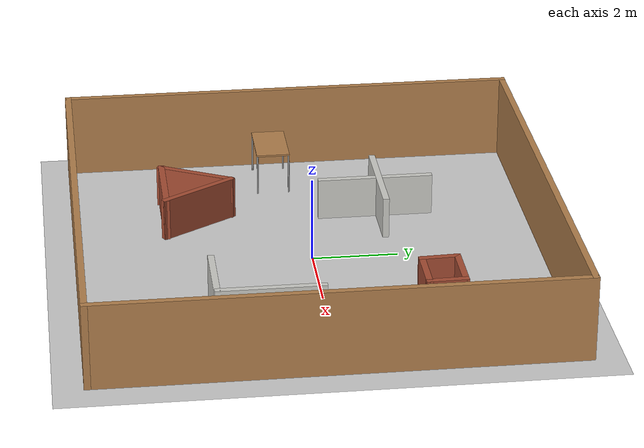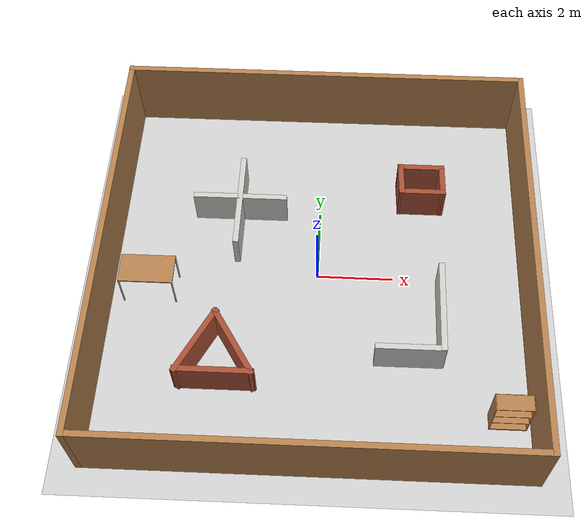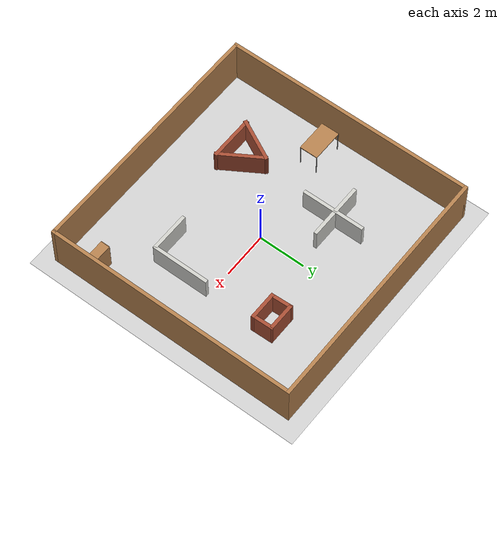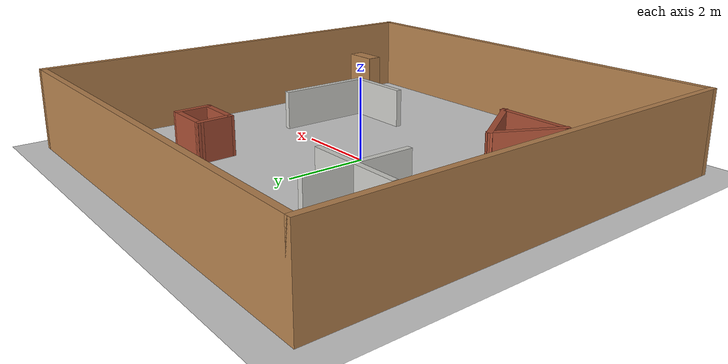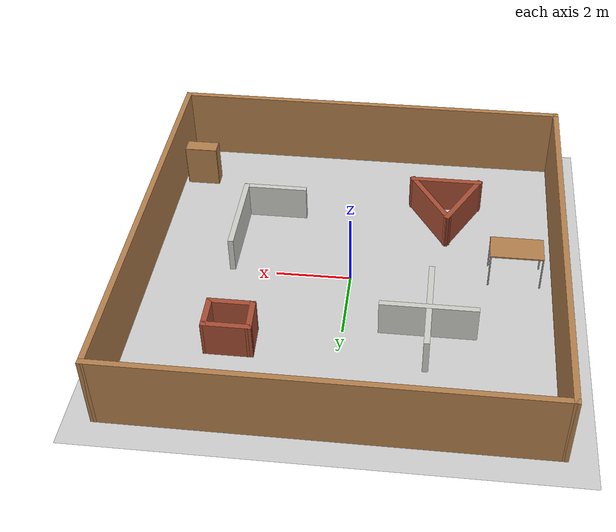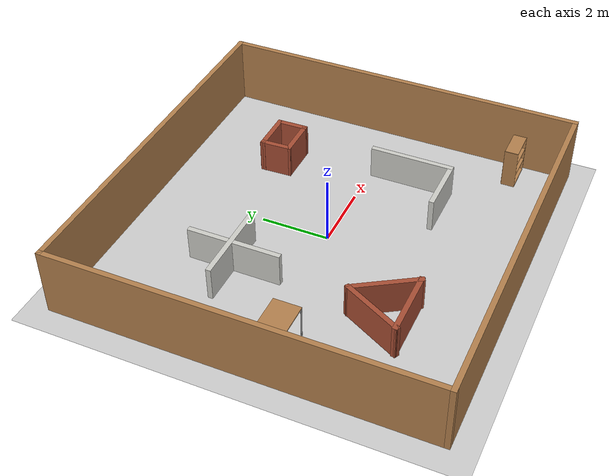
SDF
<sdf version="1.6">
 <world name="default">
  <light name="sun" type="directional">
   <pose>0 0 10 0 -0 0</pose>
   <diffuse>0.8 0.8 0.8 1</diffuse>
   <specular>0.1 0.1 0.1 1</specular>
   <attenuation>
    <range>1000</range>
    <constant>0.9</constant>
    <linear>0.01</linear>
    <quadratic>0.001</quadratic>
   </attenuation>
   <direction>-0.5 0.5 -1</direction>
  </light>
  <model name="ground_plane">
   <static>1</static>
   <link name="link">
    <collision name="collision">
     <geometry><plane><normal>0 0 1</normal><size>100 100</size></plane></geometry>
     <surface><friction><ode><mu>100</mu><mu2>50</mu2></ode></friction></surface>
    </collision>
    <visual name="visual">
     <cast_shadows>0</cast_shadows>
     <geometry><plane><normal>0 0 1</normal><size>100 100</size></plane></geometry>
     <material>
      <script><uri>file://media/materials/scripts/gazebo.material</uri><name>Gazebo/Grey</name></script>
     </material>
    </visual>
   </link>
  </model>
  <gravity>0 0 -9.8</gravity>
  <magnetic_field>6e-06 2.3e-05 -4.2e-05</magnetic_field>
  <atmosphere type="adiabatic"/>
  <physics name="default_physics" default="0" type="ode">
   <max_step_size>0.001</max_step_size>
   <real_time_factor>1</real_time_factor>
   <real_time_update_rate>1000</real_time_update_rate>
  </physics>
  <scene><ambient>0.4 0.4 0.4 1</ambient><background>0.7 0.7 0.7 1</background><shadows>1</shadows></scene>
  <spherical_coordinates>
   <surface_model>EARTH_WGS84</surface_model>
   <latitude_deg>0</latitude_deg>
   <longitude_deg>0</longitude_deg>
   <elevation>0</elevation>
   <heading_deg>0</heading_deg>
  </spherical_coordinates>
  <model name="obstacle_Wall_11">
   <pose>-2.152 1.857 0 0 -0 0</pose>
   <static>1</static>
   <link name="link">
    <visual name="Visual">
     <pose>0 0 0.5 0 -0 0</pose>
     <geometry><box><size>2.5 0.15 1</size></box></geometry>
     <material>
      <script><uri>file://media/materials/scripts/gazebo.material</uri><name>Gazebo/CeilingTiled</name></script>
     </material>
    </visual>
    <collision name="Collision">
     <pose>0 0 0.5 0 -0 0</pose>
     <geometry><box><size>2.5 0.15 1</size></box></geometry>
    </collision>
   </link>
  </model>
  <model name="obstacle_Wall_13">
   <pose>-2.155 1.764 0 0 0 -1.5708</pose>
   <static>1</static>
   <link name="link">
    <visual name="Visual">
     <pose>0 0 0.5 0 -0 0</pose>
     <geometry><box><size>2.75 0.15 1</size></box></geometry>
     <material>
      <script><uri>file://media/materials/scripts/gazebo.material</uri><name>Gazebo/CeilingTiled</name></script>
     </material>
    </visual>
    <collision name="Collision">
     <pose>0 0 0.5 0 -0 0</pose>
     <geometry><box><size>2.75 0.15 1</size></box></geometry>
    </collision>
   </link>
  </model>
  <model name="obstacle_Wall_15">
   <pose>2.724 3.029 0 0 -0 0</pose>
   <static>1</static>
   <link name="link">
    <visual name="Visual">
     <pose>0 0 0.5 0 -0 0</pose>
     <geometry><box><size>1.2678 0.15 1</size></box></geometry>
     <material>
      <script><uri>file://media/materials/scripts/gazebo.material</uri><name>Gazebo/Bricks</name></script>
     </material>
    </visual>
    <collision name="Collision">
     <pose>0 0 0.5 0 -0 0</pose>
     <geometry><box><size>1.2678 0.15 1</size></box></geometry>
    </collision>
   </link>
  </model>
  <model name="obstacle_Wall_16">
   <pose>3.2915 2.6215 0 0 0 -1.54994</pose>
   <static>1</static>
   <link name="link">
    <visual name="Visual">
     <pose>0 0 0.5 0 -0 0</pose>
     <geometry><box><size>0.965005 0.15 1</size></box></geometry>
     <material>
      <script><uri>file://media/materials/scripts/gazebo.material</uri><name>Gazebo/Bricks</name></script>
     </material>
    </visual>
    <collision name="Collision">
     <pose>0 0 0.5 0 -0 0</pose>
     <geometry><box><size>0.965005 0.15 1</size></box></geometry>
    </collision>
   </link>
  </model>
  <model name="obstacle_Wall_17">
   <pose>2.75 2.214 0 0 -0 3.14159</pose>
   <static>1</static>
   <link name="link">
    <visual name="Visual">
     <pose>0 0 0.5 0 -0 0</pose>
     <geometry><box><size>1.25 0.15 1</size></box></geometry>
     <material>
      <script><uri>file://media/materials/scripts/gazebo.material</uri><name>Gazebo/Bricks</name></script>
     </material>
    </visual>
    <collision name="Collision">
     <pose>0 0 0.5 0 -0 0</pose>
     <geometry><box><size>1.25 0.15 1</size></box></geometry>
    </collision>
   </link>
  </model>
  <model name="obstacle_Wall_18">
   <pose>2.1825 2.6215 0 0 -0 1.61372</pose>
   <static>1</static>
   <link name="link">
    <visual name="Visual">
     <pose>0 0 0.5 0 -0 0</pose>
     <geometry><box><size>0.965005 0.15 1</size></box></geometry>
     <material>
      <script><uri>file://media/materials/scripts/gazebo.material</uri><name>Gazebo/Bricks</name></script>
     </material>
    </visual>
    <collision name="Collision">
     <pose>0 0 0.5 0 -0 0</pose>
     <geometry><box><size>0.965005 0.15 1</size></box></geometry>
    </collision>
   </link>
  </model>
  <model name="obstacle_Wall_24">
   <pose>-2.89576 -2.49088 0 0 -0 1.09459</pose>
   <static>1</static>
   <link name="link">
    <visual name="Visual">
     <pose>0 0 0.5 0 -0 0</pose>
     <geometry><box><size>1.97704 0.15 1</size></box></geometry>
     <material>
      <script><uri>file://media/materials/scripts/gazebo.material</uri><name>Gazebo/Bricks</name></script>
     </material>
    </visual>
    <collision name="Collision">
     <pose>0 0 0.5 0 -0 0</pose>
     <geometry><box><size>1.97704 0.15 1</size></box></geometry>
    </collision>
   </link>
  </model>
  <model name="obstacle_Wall_25">
   <pose>-1.97077 -2.49088 0 0 0 -1.01325</pose>
   <static>1</static>
   <link name="link">
    <visual name="Visual">
     <pose>0 0 0.5 0 -0 0</pose>
     <geometry><box><size>2.06356 0.15 1</size></box></geometry>
     <material>
      <script><uri>file://media/materials/scripts/gazebo.material</uri><name>Gazebo/Bricks</name></script>
     </material>
    </visual>
    <collision name="Collision">
     <pose>0 0 0.5 0 -0 0</pose>
     <geometry><box><size>2.06356 0.15 1</size></box></geometry>
    </collision>
   </link>
  </model>
  <model name="obstacle_Wall_26">
   <pose>-2.38953 -3.28527 0 0 -0 3.14159</pose>
   <static>1</static>
   <link name="link">
    <visual name="Visual">
     <pose>0 0 0.5 0 -0 0</pose>
     <geometry><box><size>2 0.15 1</size></box></geometry>
     <material>
      <script><uri>file://media/materials/scripts/gazebo.material</uri><name>Gazebo/Bricks</name></script>
     </material>
    </visual>
    <collision name="Collision">
     <pose>0 0 0.5 0 -0 0</pose>
     <geometry><box><size>2 0.15 1</size></box></geometry>
    </collision>
   </link>
  </model>
  <model name="obstacle_Wall_28">
   <pose>2.38813 -2.48047 0 0 -0 0</pose>
   <static>1</static>
   <link name="link">
    <visual name="Visual">
     <pose>0 0 0.5 0 -0 0</pose>
     <geometry><box><size>1.75 0.15 1</size></box></geometry>
     <material>
      <script><uri>file://media/materials/scripts/gazebo.material</uri><name>Gazebo/CeilingTiled</name></script>
     </material>
    </visual>
    <collision name="Collision">
     <pose>0 0 0.5 0 -0 0</pose>
     <geometry><box><size>1.75 0.15 1</size></box></geometry>
    </collision>
   </link>
  </model>
  <model name="obstacle_Wall_29">
   <pose>3.20562 -1.28798 0 0 -0 1.5708</pose>
   <static>1</static>
   <link name="link">
    <visual name="Visual">
     <pose>0 0 0.5 0 -0 0</pose>
     <geometry><box><size>2.5 0.15 1</size></box></geometry>
     <material>
      <script><uri>file://media/materials/scripts/gazebo.material</uri><name>Gazebo/CeilingTiled</name></script>
     </material>
    </visual>
    <collision name="Collision">
     <pose>0 0 0.5 0 -0 0</pose>
     <geometry><box><size>2.5 0.15 1</size></box></geometry>
    </collision>
   </link>
  </model>
  <model name="obstacle_Wall_6">
   <pose>0 5.425 0 0 -0 0</pose>
   <static>1</static>
   <link name="link">
    <visual name="Visual">
     <pose>0 0 1 0 -0 0</pose>
     <geometry><box><size>11 0.15 2</size></box></geometry>
     <material>
      <script><uri>file://media/materials/scripts/gazebo.material</uri><name>Gazebo/Wood</name></script>
     </material>
    </visual>
    <collision name="Collision">
     <pose>0 0 1 0 -0 0</pose>
     <geometry><box><size>11 0.15 2</size></box></geometry>
    </collision>
   </link>
  </model>
  <model name="obstacle_Wall_7">
   <pose>5.425 0 0 0 0 -1.5708</pose>
   <static>1</static>
   <link name="link">
    <visual name="Visual">
     <pose>0 0 1 0 -0 0</pose>
     <geometry><box><size>11 0.15 2</size></box></geometry>
     <material>
      <script><uri>file://media/materials/scripts/gazebo.material</uri><name>Gazebo/Wood</name></script>
     </material>
    </visual>
    <collision name="Collision">
     <pose>0 0 1 0 -0 0</pose>
     <geometry><box><size>11 0.15 2</size></box></geometry>
    </collision>
   </link>
  </model>
  <model name="obstacle_Wall_8">
   <pose>0 -5.425 0 0 -0 3.14159</pose>
   <static>1</static>
   <link name="link">
    <visual name="Visual">
     <pose>0 0 1 0 -0 0</pose>
     <geometry><box><size>11 0.15 2</size></box></geometry>
     <material>
      <script><uri>file://media/materials/scripts/gazebo.material</uri><name>Gazebo/Wood</name></script>
     </material>
    </visual>
    <collision name="Collision">
     <pose>0 0 1 0 -0 0</pose>
     <geometry><box><size>11 0.15 2</size></box></geometry>
    </collision>
   </link>
  </model>
  <model name="obstacle_Wall_9">
   <pose>-5.425 0 0 0 -0 1.5708</pose>
   <static>1</static>
   <link name="link">
    <visual name="Visual">
     <pose>0 0 1 0 -0 0</pose>
     <geometry><box><size>11 0.15 2</size></box></geometry>
     <material>
      <script><uri>file://media/materials/scripts/gazebo.material</uri><name>Gazebo/Wood</name></script>
     </material>
    </visual>
    <collision name="Collision">
     <pose>0 0 1 0 -0 0</pose>
     <geometry><box><size>11 0.15 2</size></box></geometry>
    </collision>
   </link>
  </model>
  <model name="bookshelf">
   <static>1</static>
   <link name="link">
    <inertial><mass>1</mass></inertial>
    <collision name="back">
     <pose>0 0.005 0.6 0 -0 0</pose>
     <geometry><box><size>0.9 0.01 1.2</size></box></geometry>
    </collision>
    <visual name="visual1">
     <pose>0 0.005 0.6 0 -0 0</pose>
     <geometry><box><size>0.9 0.01 1.2</size></box></geometry>
     <material>
      <script><uri>file://media/materials/scripts/gazebo.material</uri><name>Gazebo/Wood</name></script>
     </material>
    </visual>
    <collision name="left_side">
     <pose>0.45 -0.195 0.6 0 -0 0</pose>
     <geometry><box><size>0.02 0.4 1.2</size></box></geometry>
    </collision>
    <visual name="visual2">
     <pose>0.45 -0.195 0.6 0 -0 0</pose>
     <geometry><box><size>0.02 0.4 1.2</size></box></geometry>
     <material>
      <script><uri>file://media/materials/scripts/gazebo.material</uri><name>Gazebo/Wood</name></script>
     </material>
    </visual>
    <collision name="right_side">
     <pose>-0.45 -0.195 0.6 0 -0 0</pose>
     <geometry><box><size>0.02 0.4 1.2</size></box></geometry>
    </collision>
    <visual name="visual3">
     <pose>-0.45 -0.195 0.6 0 -0 0</pose>
     <geometry><box><size>0.02 0.4 1.2</size></box></geometry>
     <material>
      <script><uri>file://media/materials/scripts/gazebo.material</uri><name>Gazebo/Wood</name></script>
     </material>
    </visual>
    <collision name="bottom">
     <pose>0 -0.195 0.03 0 -0 0</pose>
     <geometry><box><size>0.88 0.4 0.06</size></box></geometry>
    </collision>
    <visual name="visual4">
     <pose>0 -0.195 0.03 0 -0 0</pose>
     <geometry><box><size>0.88 0.4 0.06</size></box></geometry>
     <material>
      <script><uri>file://media/materials/scripts/gazebo.material</uri><name>Gazebo/Wood</name></script>
     </material>
    </visual>
    <collision name="top">
     <pose>0 -0.195 1.19 0 -0 0</pose>
     <geometry><box><size>0.88 0.4 0.02</size></box></geometry>
    </collision>
    <visual name="visual5">
     <pose>0 -0.195 1.19 0 -0 0</pose>
     <geometry><box><size>0.88 0.4 0.02</size></box></geometry>
     <material>
      <script><uri>file://media/materials/scripts/gazebo.material</uri><name>Gazebo/Wood</name></script>
     </material>
    </visual>
    <collision name="low_shelf">
     <pose>0 -0.195 0.43 0 -0 0</pose>
     <geometry><box><size>0.88 0.4 0.02</size></box></geometry>
    </collision>
    <visual name="visual6">
     <pose>0 -0.195 0.43 0 -0 0</pose>
     <geometry><box><size>0.88 0.4 0.02</size></box></geometry>
     <material>
      <script><uri>file://media/materials/scripts/gazebo.material</uri><name>Gazebo/Wood</name></script>
     </material>
    </visual>
    <collision name="high_shelf">
     <pose>0 -0.195 0.8 0 -0 0</pose>
     <geometry><box><size>0.88 0.4 0.02</size></box></geometry>
    </collision>
    <visual name="visual7">
     <pose>0 -0.195 0.8 0 -0 0</pose>
     <geometry><box><size>0.88 0.4 0.02</size></box></geometry>
     <material>
      <script><uri>file://media/materials/scripts/gazebo.material</uri><name>Gazebo/Wood</name></script>
     </material>
    </visual>
   </link>
   <pose>4.78412 -3.73836 0 0 -0 0</pose>
  </model>
  <model name="table">
   <static>0</static>
   <link name="link">
    <collision name="surface">
     <pose>0 0 1 0 -0 0</pose>
     <geometry><box><size>1.5 0.8 0.03</size></box></geometry>
    </collision>
    <visual name="visual1">
     <pose>0 0 1 0 -0 0</pose>
     <geometry><box><size>1.4 0.8 0.04</size></box></geometry>
     <material>
      <script><uri>file://media/materials/scripts/gazebo.material</uri><name>Gazebo/Wood</name></script>
     </material>
    </visual>
    <collision name="front_left_leg">
     <pose>0.68 0.38 0.5 0 -0 0</pose>
     <geometry><cylinder><radius>0.02</radius><length>1</length></cylinder></geometry>
    </collision>
    <visual name="front_left_leg_visual">
     <pose>0.68 0.38 0.5 0 -0 0</pose>
     <geometry><cylinder><radius>0.02</radius><length>1</length></cylinder></geometry>
     <material>
      <script><uri>file://media/materials/scripts/gazebo.material</uri><name>Gazebo/Grey</name></script>
     </material>
    </visual>
    <collision name="front_right_leg">
     <pose>0.68 -0.38 0.5 0 -0 0</pose>
     <geometry><cylinder><radius>0.02</radius><length>1</length></cylinder></geometry>
    </collision>
    <visual name="front_right_leg_visual">
     <pose>0.68 -0.38 0.5 0 -0 0</pose>
     <geometry><cylinder><radius>0.02</radius><length>1</length></cylinder></geometry>
     <material>
      <script><uri>file://media/materials/scripts/gazebo.material</uri><name>Gazebo/Grey</name></script>
     </material>
    </visual>
    <collision name="back_right_leg">
     <pose>-0.68 -0.38 0.5 0 -0 0</pose>
     <geometry><cylinder><radius>0.02</radius><length>1</length></cylinder></geometry>
    </collision>
    <visual name="back_right_leg_visual">
     <pose>-0.68 -0.38 0.5 0 -0 0</pose>
     <geometry><cylinder><radius>0.02</radius><length>1</length></cylinder></geometry>
     <material>
      <script><uri>file://media/materials/scripts/gazebo.material</uri><name>Gazebo/Grey</name></script>
     </material>
    </visual>
    <collision name="back_left_leg">
     <pose>-0.68 0.38 0.5 0 -0 0</pose>
     <geometry><cylinder><radius>0.02</radius><length>1</length></cylinder></geometry>
    </collision>
    <visual name="back_left_leg_visual">
     <pose>-0.68 0.38 0.5 0 -0 0</pose>
     <geometry><cylinder><radius>0.02</radius><length>1</length></cylinder></geometry>
     <material>
      <script><uri>file://media/materials/scripts/gazebo.material</uri><name>Gazebo/Grey</name></script>
     </material>
    </visual>
    <inertial>
     <inertia><ixx>1</ixx><ixy>0</ixy><ixz>0</ixz><iyy>1</iyy><iyz>0</iyz><izz>1</izz></inertia>
     <mass>1</mass>
    </inertial>
   </link>
   <pose>-4.34248 -0.532954 0 0 -0 0</pose>
  </model>
 </world>
</sdf>
